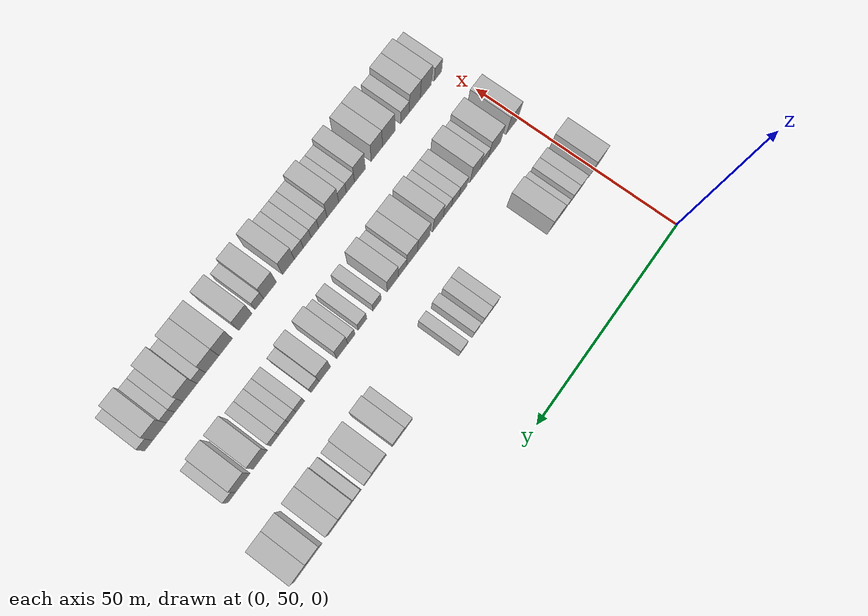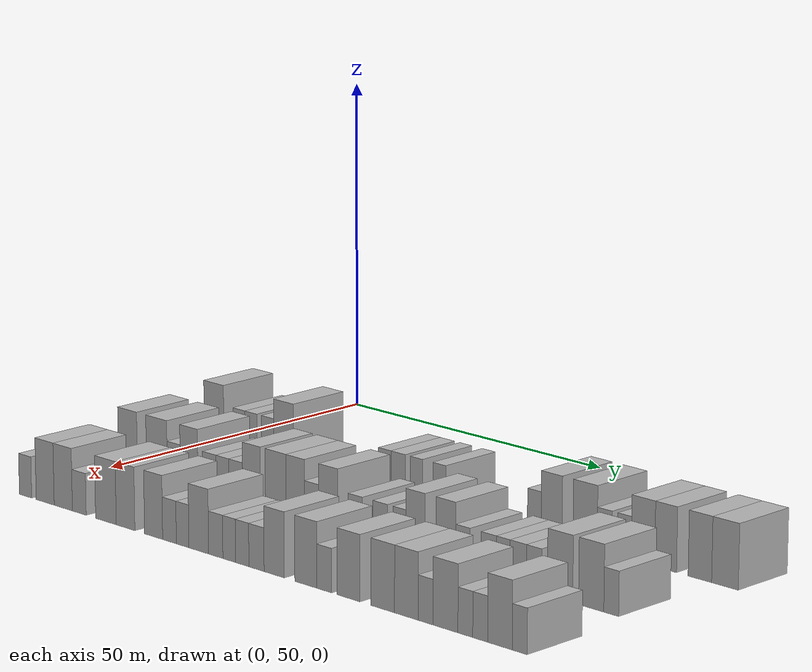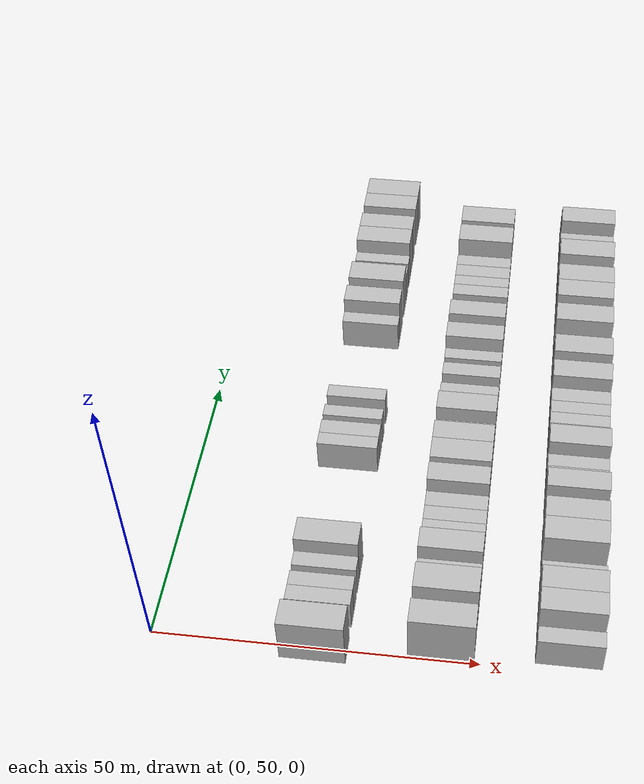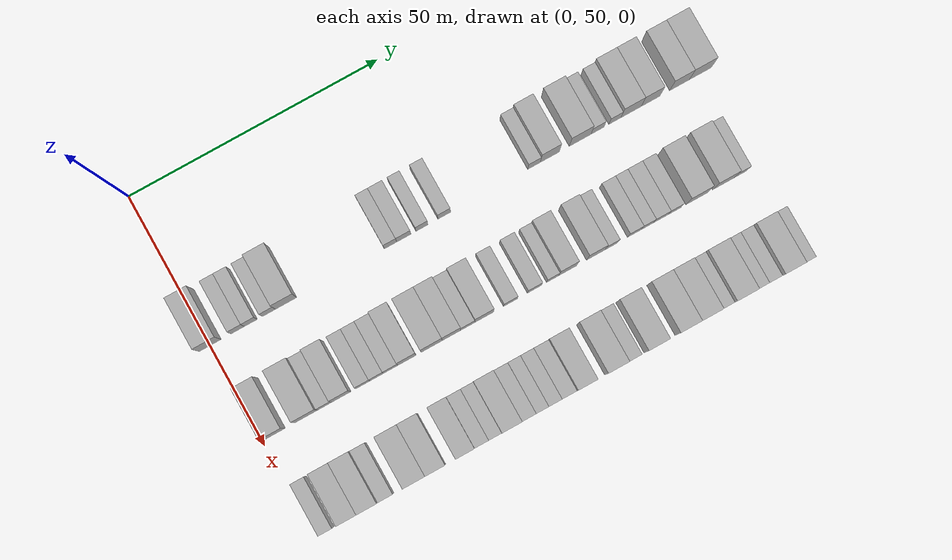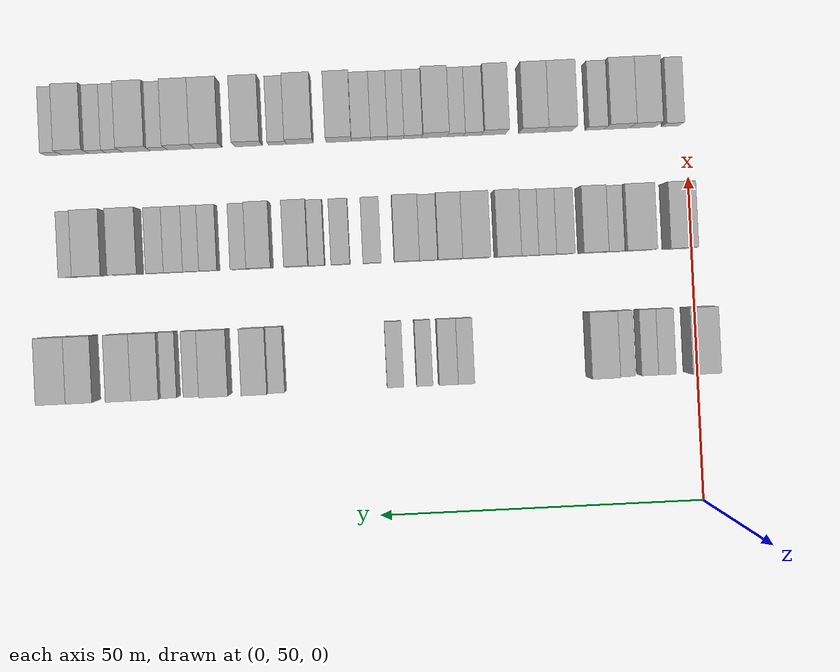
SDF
<sdf version="1.6">
 <world name="default">
  <model name="building_70">
   <static>1</static>
   <pose>25.0000 50.0988 0 0.000000 0.000000 0.000000</pose>
   <link name="link">
    <pose>0 0 4.50 0 0 0</pose>
    <collision name="collision"><geometry><box><size>10.0000 4.3170 9.0000</size></box></geometry></collision>
    <visual name="visual">
     <cast_shadows>0</cast_shadows>
     <geometry><box><size>10.0000 4.3170 9.0000</size></box></geometry>
     <material>
      <script>
       <uri>model://HANNAS_wall/materials/scripts</uri>
       <uri>model://HANNAS_wall/materials/textures</uri>
       <name>vrc/HANNAS_wall</name>
      </script>
     </material>
    </visual>
   </link>
  </model>
  <model name="building_71">
   <static>1</static>
   <pose>25.0000 55.5835 0 0.000000 0.000000 0.000000</pose>
   <link name="link">
    <pose>0 0 3.00 0 0 0</pose>
    <collision name="collision"><geometry><box><size>10.0000 2.6523 6.0000</size></box></geometry></collision>
    <visual name="visual">
     <cast_shadows>0</cast_shadows>
     <geometry><box><size>10.0000 2.6523 6.0000</size></box></geometry>
     <material>
      <script>
       <uri>model://HANNAS_wall/materials/scripts</uri>
       <uri>model://HANNAS_wall/materials/textures</uri>
       <name>vrc/HANNAS_wall</name>
      </script>
     </material>
    </visual>
   </link>
  </model>
  <model name="building_72">
   <static>1</static>
   <pose>25.0000 58.1845 0 0.000000 0.000000 0.000000</pose>
   <link name="link">
    <pose>0 0 3.00 0 0 0</pose>
    <collision name="collision"><geometry><box><size>10.0000 2.5496 6.0000</size></box></geometry></collision>
    <visual name="visual">
     <cast_shadows>0</cast_shadows>
     <geometry><box><size>10.0000 2.5496 6.0000</size></box></geometry>
     <material>
      <script>
       <uri>model://HANNAS_wall/materials/scripts</uri>
       <uri>model://HANNAS_wall/materials/textures</uri>
       <name>vrc/HANNAS_wall</name>
      </script>
     </material>
    </visual>
   </link>
  </model>
  <model name="building_73">
   <static>1</static>
   <pose>25.0000 61.7652 0 0.000000 0.000000 0.000000</pose>
   <link name="link">
    <pose>0 0 3.00 0 0 0</pose>
    <collision name="collision"><geometry><box><size>10.0000 2.6120 6.0000</size></box></geometry></collision>
    <visual name="visual">
     <cast_shadows>0</cast_shadows>
     <geometry><box><size>10.0000 2.6120 6.0000</size></box></geometry>
     <material>
      <script>
       <uri>model://HANNAS_wall/materials/scripts</uri>
       <uri>model://HANNAS_wall/materials/textures</uri>
       <name>vrc/HANNAS_wall</name>
      </script>
     </material>
    </visual>
   </link>
  </model>
  <model name="building_74">
   <static>1</static>
   <pose>25.0000 65.1840 0 0.000000 0.000000 0.000000</pose>
   <link name="link">
    <pose>0 0 4.50 0 0 0</pose>
    <collision name="collision"><geometry><box><size>10.0000 4.2255 9.0000</size></box></geometry></collision>
    <visual name="visual">
     <cast_shadows>0</cast_shadows>
     <geometry><box><size>10.0000 4.2255 9.0000</size></box></geometry>
     <material>
      <script>
       <uri>model://HANNAS_wall/materials/scripts</uri>
       <uri>model://HANNAS_wall/materials/textures</uri>
       <name>vrc/HANNAS_wall</name>
      </script>
     </material>
    </visual>
   </link>
  </model>
  <model name="building_75">
   <static>1</static>
   <pose>25.0000 86.0218 0 0.000000 0.000000 0.000000</pose>
   <link name="link">
    <pose>0 0 3.00 0 0 0</pose>
    <collision name="collision"><geometry><box><size>10.0000 2.4834 6.0000</size></box></geometry></collision>
    <visual name="visual">
     <cast_shadows>0</cast_shadows>
     <geometry><box><size>10.0000 2.4834 6.0000</size></box></geometry>
     <material>
      <script>
       <uri>model://HANNAS_wall/materials/scripts</uri>
       <uri>model://HANNAS_wall/materials/textures</uri>
       <name>vrc/HANNAS_wall</name>
      </script>
     </material>
    </visual>
   </link>
  </model>
  <model name="building_76">
   <static>1</static>
   <pose>25.0000 88.6927 0 0.000000 0.000000 0.000000</pose>
   <link name="link">
    <pose>0 0 3.00 0 0 0</pose>
    <collision name="collision"><geometry><box><size>10.0000 2.8584 6.0000</size></box></geometry></collision>
    <visual name="visual">
     <cast_shadows>0</cast_shadows>
     <geometry><box><size>10.0000 2.8584 6.0000</size></box></geometry>
     <material>
      <script>
       <uri>model://HANNAS_wall/materials/scripts</uri>
       <uri>model://HANNAS_wall/materials/textures</uri>
       <name>vrc/HANNAS_wall</name>
      </script>
     </material>
    </visual>
   </link>
  </model>
  <model name="building_77">
   <static>1</static>
   <pose>25.0000 92.3241 0 0.000000 0.000000 0.000000</pose>
   <link name="link">
    <pose>0 0 3.00 0 0 0</pose>
    <collision name="collision"><geometry><box><size>10.0000 2.4044 6.0000</size></box></geometry></collision>
    <visual name="visual">
     <cast_shadows>0</cast_shadows>
     <geometry><box><size>10.0000 2.4044 6.0000</size></box></geometry>
     <material>
      <script>
       <uri>model://HANNAS_wall/materials/scripts</uri>
       <uri>model://HANNAS_wall/materials/textures</uri>
       <name>vrc/HANNAS_wall</name>
      </script>
     </material>
    </visual>
   </link>
  </model>
  <model name="building_78">
   <static>1</static>
   <pose>25.0000 96.7889 0 0.000000 0.000000 0.000000</pose>
   <link name="link">
    <pose>0 0 3.00 0 0 0</pose>
    <collision name="collision"><geometry><box><size>10.0000 2.5252 6.0000</size></box></geometry></collision>
    <visual name="visual">
     <cast_shadows>0</cast_shadows>
     <geometry><box><size>10.0000 2.5252 6.0000</size></box></geometry>
     <material>
      <script>
       <uri>model://HANNAS_wall/materials/scripts</uri>
       <uri>model://HANNAS_wall/materials/textures</uri>
       <name>vrc/HANNAS_wall</name>
      </script>
     </material>
    </visual>
   </link>
  </model>
  <model name="building_79">
   <static>1</static>
   <pose>25.0000 114.8546 0 0.000000 0.000000 0.000000</pose>
   <link name="link">
    <pose>0 0 3.00 0 0 0</pose>
    <collision name="collision"><geometry><box><size>10.0000 2.5354 6.0000</size></box></geometry></collision>
    <visual name="visual">
     <cast_shadows>0</cast_shadows>
     <geometry><box><size>10.0000 2.5354 6.0000</size></box></geometry>
     <material>
      <script>
       <uri>model://HANNAS_wall/materials/scripts</uri>
       <uri>model://HANNAS_wall/materials/textures</uri>
       <name>vrc/HANNAS_wall</name>
      </script>
     </material>
    </visual>
   </link>
  </model>
  <model name="building_80">
   <static>1</static>
   <pose>25.0000 118.0476 0 0.000000 0.000000 0.000000</pose>
   <link name="link">
    <pose>0 0 4.50 0 0 0</pose>
    <collision name="collision"><geometry><box><size>10.0000 3.8505 9.0000</size></box></geometry></collision>
    <visual name="visual">
     <cast_shadows>0</cast_shadows>
     <geometry><box><size>10.0000 3.8505 9.0000</size></box></geometry>
     <material>
      <script>
       <uri>model://HANNAS_wall/materials/scripts</uri>
       <uri>model://HANNAS_wall/materials/textures</uri>
       <name>vrc/HANNAS_wall</name>
      </script>
     </material>
    </visual>
   </link>
  </model>
  <model name="building_81">
   <static>1</static>
   <pose>25.0000 124.1542 0 0.000000 0.000000 0.000000</pose>
   <link name="link">
    <pose>0 0 4.50 0 0 0</pose>
    <collision name="collision"><geometry><box><size>10.0000 4.3627 9.0000</size></box></geometry></collision>
    <visual name="visual">
     <cast_shadows>0</cast_shadows>
     <geometry><box><size>10.0000 4.3627 9.0000</size></box></geometry>
     <material>
      <script>
       <uri>model://HANNAS_wall/materials/scripts</uri>
       <uri>model://HANNAS_wall/materials/textures</uri>
       <name>vrc/HANNAS_wall</name>
      </script>
     </material>
    </visual>
   </link>
  </model>
  <model name="building_82">
   <static>1</static>
   <pose>25.0000 127.6540 0 0.000000 0.000000 0.000000</pose>
   <link name="link">
    <pose>0 0 3.00 0 0 0</pose>
    <collision name="collision"><geometry><box><size>10.0000 2.6370 6.0000</size></box></geometry></collision>
    <visual name="visual">
     <cast_shadows>0</cast_shadows>
     <geometry><box><size>10.0000 2.6370 6.0000</size></box></geometry>
     <material>
      <script>
       <uri>model://HANNAS_wall/materials/scripts</uri>
       <uri>model://HANNAS_wall/materials/textures</uri>
       <name>vrc/HANNAS_wall</name>
      </script>
     </material>
    </visual>
   </link>
  </model>
  <model name="building_83">
   <static>1</static>
   <pose>25.0000 131.1833 0 0.000000 0.000000 0.000000</pose>
   <link name="link">
    <pose>0 0 3.00 0 0 0</pose>
    <collision name="collision"><geometry><box><size>10.0000 2.4216 6.0000</size></box></geometry></collision>
    <visual name="visual">
     <cast_shadows>0</cast_shadows>
     <geometry><box><size>10.0000 2.4216 6.0000</size></box></geometry>
     <material>
      <script>
       <uri>model://HANNAS_wall/materials/scripts</uri>
       <uri>model://HANNAS_wall/materials/textures</uri>
       <name>vrc/HANNAS_wall</name>
      </script>
     </material>
    </visual>
   </link>
  </model>
  <model name="building_84">
   <static>1</static>
   <pose>25.0000 134.4582 0 0.000000 0.000000 0.000000</pose>
   <link name="link">
    <pose>0 0 4.50 0 0 0</pose>
    <collision name="collision"><geometry><box><size>10.0000 4.1281 9.0000</size></box></geometry></collision>
    <visual name="visual">
     <cast_shadows>0</cast_shadows>
     <geometry><box><size>10.0000 4.1281 9.0000</size></box></geometry>
     <material>
      <script>
       <uri>model://HANNAS_wall/materials/scripts</uri>
       <uri>model://HANNAS_wall/materials/textures</uri>
       <name>vrc/HANNAS_wall</name>
      </script>
     </material>
    </visual>
   </link>
  </model>
  <model name="building_85">
   <static>1</static>
   <pose>25.0000 138.4215 0 0.000000 0.000000 0.000000</pose>
   <link name="link">
    <pose>0 0 4.50 0 0 0</pose>
    <collision name="collision"><geometry><box><size>10.0000 3.7986 9.0000</size></box></geometry></collision>
    <visual name="visual">
     <cast_shadows>0</cast_shadows>
     <geometry><box><size>10.0000 3.7986 9.0000</size></box></geometry>
     <material>
      <script>
       <uri>model://HANNAS_wall/materials/scripts</uri>
       <uri>model://HANNAS_wall/materials/textures</uri>
       <name>vrc/HANNAS_wall</name>
      </script>
     </material>
    </visual>
   </link>
  </model>
  <model name="building_86">
   <static>1</static>
   <pose>25.0000 144.3194 0 0.000000 0.000000 0.000000</pose>
   <link name="link">
    <pose>0 0 4.50 0 0 0</pose>
    <collision name="collision"><geometry><box><size>10.0000 3.9971 9.0000</size></box></geometry></collision>
    <visual name="visual">
     <cast_shadows>0</cast_shadows>
     <geometry><box><size>10.0000 3.9971 9.0000</size></box></geometry>
     <material>
      <script>
       <uri>model://HANNAS_wall/materials/scripts</uri>
       <uri>model://HANNAS_wall/materials/textures</uri>
       <name>vrc/HANNAS_wall</name>
      </script>
     </material>
    </visual>
   </link>
  </model>
  <model name="building_87">
   <static>1</static>
   <pose>25.0000 148.5653 0 0.000000 0.000000 0.000000</pose>
   <link name="link">
    <pose>0 0 4.50 0 0 0</pose>
    <collision name="collision"><geometry><box><size>10.0000 4.4947 9.0000</size></box></geometry></collision>
    <visual name="visual">
     <cast_shadows>0</cast_shadows>
     <geometry><box><size>10.0000 4.4947 9.0000</size></box></geometry>
     <material>
      <script>
       <uri>model://HANNAS_wall/materials/scripts</uri>
       <uri>model://HANNAS_wall/materials/textures</uri>
       <name>vrc/HANNAS_wall</name>
      </script>
     </material>
    </visual>
   </link>
  </model>
  <model name="building_178">
   <static>1</static>
   <pose>44.0000 52.5532 0 0.000000 0.000000 0.000000</pose>
   <link name="link">
    <pose>0 0 4.50 0 0 0</pose>
    <collision name="collision"><geometry><box><size>10.0000 4.1477 9.0000</size></box></geometry></collision>
    <visual name="visual">
     <cast_shadows>0</cast_shadows>
     <geometry><box><size>10.0000 4.1477 9.0000</size></box></geometry>
     <material>
      <script>
       <uri>model://HANNAS_wall/materials/scripts</uri>
       <uri>model://HANNAS_wall/materials/textures</uri>
       <name>vrc/HANNAS_wall</name>
      </script>
     </material>
    </visual>
   </link>
  </model>
  <model name="building_179">
   <static>1</static>
   <pose>44.0000 58.8761 0 0.000000 0.000000 0.000000</pose>
   <link name="link">
    <pose>0 0 4.50 0 0 0</pose>
    <collision name="collision"><geometry><box><size>10.0000 4.4980 9.0000</size></box></geometry></collision>
    <visual name="visual">
     <cast_shadows>0</cast_shadows>
     <geometry><box><size>10.0000 4.4980 9.0000</size></box></geometry>
     <material>
      <script>
       <uri>model://HANNAS_wall/materials/scripts</uri>
       <uri>model://HANNAS_wall/materials/textures</uri>
       <name>vrc/HANNAS_wall</name>
      </script>
     </material>
    </visual>
   </link>
  </model>
  <model name="building_180">
   <static>1</static>
   <pose>44.0000 62.5191 0 0.000000 0.000000 0.000000</pose>
   <link name="link">
    <pose>0 0 3.00 0 0 0</pose>
    <collision name="collision"><geometry><box><size>10.0000 2.7881 6.0000</size></box></geometry></collision>
    <visual name="visual">
     <cast_shadows>0</cast_shadows>
     <geometry><box><size>10.0000 2.7881 6.0000</size></box></geometry>
     <material>
      <script>
       <uri>model://HANNAS_wall/materials/scripts</uri>
       <uri>model://HANNAS_wall/materials/textures</uri>
       <name>vrc/HANNAS_wall</name>
      </script>
     </material>
    </visual>
   </link>
  </model>
  <model name="building_181">
   <static>1</static>
   <pose>44.0000 65.7856 0 0.000000 0.000000 0.000000</pose>
   <link name="link">
    <pose>0 0 4.50 0 0 0</pose>
    <collision name="collision"><geometry><box><size>10.0000 3.7450 9.0000</size></box></geometry></collision>
    <visual name="visual">
     <cast_shadows>0</cast_shadows>
     <geometry><box><size>10.0000 3.7450 9.0000</size></box></geometry>
     <material>
      <script>
       <uri>model://HANNAS_wall/materials/scripts</uri>
       <uri>model://HANNAS_wall/materials/textures</uri>
       <name>vrc/HANNAS_wall</name>
      </script>
     </material>
    </visual>
   </link>
  </model>
  <model name="building_182">
   <static>1</static>
   <pose>44.0000 70.0593 0 0.000000 0.000000 0.000000</pose>
   <link name="link">
    <pose>0 0 3.00 0 0 0</pose>
    <collision name="collision"><geometry><box><size>10.0000 2.8023 6.0000</size></box></geometry></collision>
    <visual name="visual">
     <cast_shadows>0</cast_shadows>
     <geometry><box><size>10.0000 2.8023 6.0000</size></box></geometry>
     <material>
      <script>
       <uri>model://HANNAS_wall/materials/scripts</uri>
       <uri>model://HANNAS_wall/materials/textures</uri>
       <name>vrc/HANNAS_wall</name>
      </script>
     </material>
    </visual>
   </link>
  </model>
  <model name="building_183">
   <static>1</static>
   <pose>44.0000 72.8020 0 0.000000 0.000000 0.000000</pose>
   <link name="link">
    <pose>0 0 3.00 0 0 0</pose>
    <collision name="collision"><geometry><box><size>10.0000 2.6830 6.0000</size></box></geometry></collision>
    <visual name="visual">
     <cast_shadows>0</cast_shadows>
     <geometry><box><size>10.0000 2.6830 6.0000</size></box></geometry>
     <material>
      <script>
       <uri>model://HANNAS_wall/materials/scripts</uri>
       <uri>model://HANNAS_wall/materials/textures</uri>
       <name>vrc/HANNAS_wall</name>
      </script>
     </material>
    </visual>
   </link>
  </model>
  <model name="building_184">
   <static>1</static>
   <pose>44.0000 75.5749 0 0.000000 0.000000 0.000000</pose>
   <link name="link">
    <pose>0 0 3.00 0 0 0</pose>
    <collision name="collision"><geometry><box><size>10.0000 2.8629 6.0000</size></box></geometry></collision>
    <visual name="visual">
     <cast_shadows>0</cast_shadows>
     <geometry><box><size>10.0000 2.8629 6.0000</size></box></geometry>
     <material>
      <script>
       <uri>model://HANNAS_wall/materials/scripts</uri>
       <uri>model://HANNAS_wall/materials/textures</uri>
       <name>vrc/HANNAS_wall</name>
      </script>
     </material>
    </visual>
   </link>
  </model>
  <model name="building_185">
   <static>1</static>
   <pose>44.0000 78.8162 0 0.000000 0.000000 0.000000</pose>
   <link name="link">
    <pose>0 0 4.50 0 0 0</pose>
    <collision name="collision"><geometry><box><size>10.0000 3.6196 9.0000</size></box></geometry></collision>
    <visual name="visual">
     <cast_shadows>0</cast_shadows>
     <geometry><box><size>10.0000 3.6196 9.0000</size></box></geometry>
     <material>
      <script>
       <uri>model://HANNAS_wall/materials/scripts</uri>
       <uri>model://HANNAS_wall/materials/textures</uri>
       <name>vrc/HANNAS_wall</name>
      </script>
     </material>
    </visual>
   </link>
  </model>
  <model name="building_186">
   <static>1</static>
   <pose>44.0000 83.7290 0 0.000000 0.000000 0.000000</pose>
   <link name="link">
    <pose>0 0 4.50 0 0 0</pose>
    <collision name="collision"><geometry><box><size>10.0000 4.2061 9.0000</size></box></geometry></collision>
    <visual name="visual">
     <cast_shadows>0</cast_shadows>
     <geometry><box><size>10.0000 4.2061 9.0000</size></box></geometry>
     <material>
      <script>
       <uri>model://HANNAS_wall/materials/scripts</uri>
       <uri>model://HANNAS_wall/materials/textures</uri>
       <name>vrc/HANNAS_wall</name>
      </script>
     </material>
    </visual>
   </link>
  </model>
  <model name="building_187">
   <static>1</static>
   <pose>44.0000 87.6617 0 0.000000 0.000000 0.000000</pose>
   <link name="link">
    <pose>0 0 4.50 0 0 0</pose>
    <collision name="collision"><geometry><box><size>10.0000 3.6593 9.0000</size></box></geometry></collision>
    <visual name="visual">
     <cast_shadows>0</cast_shadows>
     <geometry><box><size>10.0000 3.6593 9.0000</size></box></geometry>
     <material>
      <script>
       <uri>model://HANNAS_wall/materials/scripts</uri>
       <uri>model://HANNAS_wall/materials/textures</uri>
       <name>vrc/HANNAS_wall</name>
      </script>
     </material>
    </visual>
   </link>
  </model>
  <model name="building_188">
   <static>1</static>
   <pose>44.0000 90.9011 0 0.000000 0.000000 0.000000</pose>
   <link name="link">
    <pose>0 0 3.00 0 0 0</pose>
    <collision name="collision"><geometry><box><size>10.0000 2.8195 6.0000</size></box></geometry></collision>
    <visual name="visual">
     <cast_shadows>0</cast_shadows>
     <geometry><box><size>10.0000 2.8195 6.0000</size></box></geometry>
     <material>
      <script>
       <uri>model://HANNAS_wall/materials/scripts</uri>
       <uri>model://HANNAS_wall/materials/textures</uri>
       <name>vrc/HANNAS_wall</name>
      </script>
     </material>
    </visual>
   </link>
  </model>
  <model name="building_189">
   <static>1</static>
   <pose>44.0000 94.1889 0 0.000000 0.000000 0.000000</pose>
   <link name="link">
    <pose>0 0 4.50 0 0 0</pose>
    <collision name="collision"><geometry><box><size>10.0000 3.7561 9.0000</size></box></geometry></collision>
    <visual name="visual">
     <cast_shadows>0</cast_shadows>
     <geometry><box><size>10.0000 3.7561 9.0000</size></box></geometry>
     <material>
      <script>
       <uri>model://HANNAS_wall/materials/scripts</uri>
       <uri>model://HANNAS_wall/materials/textures</uri>
       <name>vrc/HANNAS_wall</name>
      </script>
     </material>
    </visual>
   </link>
  </model>
  <model name="building_190">
   <static>1</static>
   <pose>44.0000 99.4490 0 0.000000 0.000000 0.000000</pose>
   <link name="link">
    <pose>0 0 3.00 0 0 0</pose>
    <collision name="collision"><geometry><box><size>10.0000 2.7641 6.0000</size></box></geometry></collision>
    <visual name="visual">
     <cast_shadows>0</cast_shadows>
     <geometry><box><size>10.0000 2.7641 6.0000</size></box></geometry>
     <material>
      <script>
       <uri>model://HANNAS_wall/materials/scripts</uri>
       <uri>model://HANNAS_wall/materials/textures</uri>
       <name>vrc/HANNAS_wall</name>
      </script>
     </material>
    </visual>
   </link>
  </model>
  <model name="building_191">
   <static>1</static>
   <pose>44.0000 104.2594 0 0.000000 0.000000 0.000000</pose>
   <link name="link">
    <pose>0 0 3.00 0 0 0</pose>
    <collision name="collision"><geometry><box><size>10.0000 2.8566 6.0000</size></box></geometry></collision>
    <visual name="visual">
     <cast_shadows>0</cast_shadows>
     <geometry><box><size>10.0000 2.8566 6.0000</size></box></geometry>
     <material>
      <script>
       <uri>model://HANNAS_wall/materials/scripts</uri>
       <uri>model://HANNAS_wall/materials/textures</uri>
       <name>vrc/HANNAS_wall</name>
      </script>
     </material>
    </visual>
   </link>
  </model>
  <model name="building_192">
   <static>1</static>
   <pose>44.0000 107.8938 0 0.000000 0.000000 0.000000</pose>
   <link name="link">
    <pose>0 0 3.00 0 0 0</pose>
    <collision name="collision"><geometry><box><size>10.0000 2.4122 6.0000</size></box></geometry></collision>
    <visual name="visual">
     <cast_shadows>0</cast_shadows>
     <geometry><box><size>10.0000 2.4122 6.0000</size></box></geometry>
     <material>
      <script>
       <uri>model://HANNAS_wall/materials/scripts</uri>
       <uri>model://HANNAS_wall/materials/textures</uri>
       <name>vrc/HANNAS_wall</name>
      </script>
     </material>
    </visual>
   </link>
  </model>
  <model name="building_193">
   <static>1</static>
   <pose>44.0000 110.9068 0 0.000000 0.000000 0.000000</pose>
   <link name="link">
    <pose>0 0 4.50 0 0 0</pose>
    <collision name="collision"><geometry><box><size>10.0000 3.6139 9.0000</size></box></geometry></collision>
    <visual name="visual">
     <cast_shadows>0</cast_shadows>
     <geometry><box><size>10.0000 3.6139 9.0000</size></box></geometry>
     <material>
      <script>
       <uri>model://HANNAS_wall/materials/scripts</uri>
       <uri>model://HANNAS_wall/materials/textures</uri>
       <name>vrc/HANNAS_wall</name>
      </script>
     </material>
    </visual>
   </link>
  </model>
  <model name="building_194">
   <static>1</static>
   <pose>44.0000 116.5399 0 0.000000 0.000000 0.000000</pose>
   <link name="link">
    <pose>0 0 4.50 0 0 0</pose>
    <collision name="collision"><geometry><box><size>10.0000 3.6522 9.0000</size></box></geometry></collision>
    <visual name="visual">
     <cast_shadows>0</cast_shadows>
     <geometry><box><size>10.0000 3.6522 9.0000</size></box></geometry>
     <material>
      <script>
       <uri>model://HANNAS_wall/materials/scripts</uri>
       <uri>model://HANNAS_wall/materials/textures</uri>
       <name>vrc/HANNAS_wall</name>
      </script>
     </material>
    </visual>
   </link>
  </model>
  <model name="building_195">
   <static>1</static>
   <pose>44.0000 119.6720 0 0.000000 0.000000 0.000000</pose>
   <link name="link">
    <pose>0 0 3.00 0 0 0</pose>
    <collision name="collision"><geometry><box><size>10.0000 2.6119 6.0000</size></box></geometry></collision>
    <visual name="visual">
     <cast_shadows>0</cast_shadows>
     <geometry><box><size>10.0000 2.6119 6.0000</size></box></geometry>
     <material>
      <script>
       <uri>model://HANNAS_wall/materials/scripts</uri>
       <uri>model://HANNAS_wall/materials/textures</uri>
       <name>vrc/HANNAS_wall</name>
      </script>
     </material>
    </visual>
   </link>
  </model>
  <model name="building_196">
   <static>1</static>
   <pose>44.0000 124.3446 0 0.000000 0.000000 0.000000</pose>
   <link name="link">
    <pose>0 0 3.00 0 0 0</pose>
    <collision name="collision"><geometry><box><size>10.0000 2.7333 6.0000</size></box></geometry></collision>
    <visual name="visual">
     <cast_shadows>0</cast_shadows>
     <geometry><box><size>10.0000 2.7333 6.0000</size></box></geometry>
     <material>
      <script>
       <uri>model://HANNAS_wall/materials/scripts</uri>
       <uri>model://HANNAS_wall/materials/textures</uri>
       <name>vrc/HANNAS_wall</name>
      </script>
     </material>
    </visual>
   </link>
  </model>
  <model name="building_197">
   <static>1</static>
   <pose>44.0000 126.9331 0 0.000000 0.000000 0.000000</pose>
   <link name="link">
    <pose>0 0 3.00 0 0 0</pose>
    <collision name="collision"><geometry><box><size>10.0000 2.4438 6.0000</size></box></geometry></collision>
    <visual name="visual">
     <cast_shadows>0</cast_shadows>
     <geometry><box><size>10.0000 2.4438 6.0000</size></box></geometry>
     <material>
      <script>
       <uri>model://HANNAS_wall/materials/scripts</uri>
       <uri>model://HANNAS_wall/materials/textures</uri>
       <name>vrc/HANNAS_wall</name>
      </script>
     </material>
    </visual>
   </link>
  </model>
  <model name="building_198">
   <static>1</static>
   <pose>44.0000 129.6224 0 0.000000 0.000000 0.000000</pose>
   <link name="link">
    <pose>0 0 3.00 0 0 0</pose>
    <collision name="collision"><geometry><box><size>10.0000 2.9348 6.0000</size></box></geometry></collision>
    <visual name="visual">
     <cast_shadows>0</cast_shadows>
     <geometry><box><size>10.0000 2.9348 6.0000</size></box></geometry>
     <material>
      <script>
       <uri>model://HANNAS_wall/materials/scripts</uri>
       <uri>model://HANNAS_wall/materials/textures</uri>
       <name>vrc/HANNAS_wall</name>
      </script>
     </material>
    </visual>
   </link>
  </model>
  <model name="building_199">
   <static>1</static>
   <pose>44.0000 132.4322 0 0.000000 0.000000 0.000000</pose>
   <link name="link">
    <pose>0 0 3.00 0 0 0</pose>
    <collision name="collision"><geometry><box><size>10.0000 2.6848 6.0000</size></box></geometry></collision>
    <visual name="visual">
     <cast_shadows>0</cast_shadows>
     <geometry><box><size>10.0000 2.6848 6.0000</size></box></geometry>
     <material>
      <script>
       <uri>model://HANNAS_wall/materials/scripts</uri>
       <uri>model://HANNAS_wall/materials/textures</uri>
       <name>vrc/HANNAS_wall</name>
      </script>
     </material>
    </visual>
   </link>
  </model>
  <model name="building_200">
   <static>1</static>
   <pose>44.0000 136.9793 0 0.000000 0.000000 0.000000</pose>
   <link name="link">
    <pose>0 0 4.50 0 0 0</pose>
    <collision name="collision"><geometry><box><size>10.0000 4.4093 9.0000</size></box></geometry></collision>
    <visual name="visual">
     <cast_shadows>0</cast_shadows>
     <geometry><box><size>10.0000 4.4093 9.0000</size></box></geometry>
     <material>
      <script>
       <uri>model://HANNAS_wall/materials/scripts</uri>
       <uri>model://HANNAS_wall/materials/textures</uri>
       <name>vrc/HANNAS_wall</name>
      </script>
     </material>
    </visual>
   </link>
  </model>
  <model name="building_201">
   <static>1</static>
   <pose>44.0000 142.3476 0 0.000000 0.000000 0.000000</pose>
   <link name="link">
    <pose>0 0 4.50 0 0 0</pose>
    <collision name="collision"><geometry><box><size>10.0000 4.3271 9.0000</size></box></geometry></collision>
    <visual name="visual">
     <cast_shadows>0</cast_shadows>
     <geometry><box><size>10.0000 4.3271 9.0000</size></box></geometry>
     <material>
      <script>
       <uri>model://HANNAS_wall/materials/scripts</uri>
       <uri>model://HANNAS_wall/materials/textures</uri>
       <name>vrc/HANNAS_wall</name>
      </script>
     </material>
    </visual>
   </link>
  </model>
  <model name="building_202">
   <static>1</static>
   <pose>44.0000 145.7685 0 0.000000 0.000000 0.000000</pose>
   <link name="link">
    <pose>0 0 3.00 0 0 0</pose>
    <collision name="collision"><geometry><box><size>10.0000 2.5148 6.0000</size></box></geometry></collision>
    <visual name="visual">
     <cast_shadows>0</cast_shadows>
     <geometry><box><size>10.0000 2.5148 6.0000</size></box></geometry>
     <material>
      <script>
       <uri>model://HANNAS_wall/materials/scripts</uri>
       <uri>model://HANNAS_wall/materials/textures</uri>
       <name>vrc/HANNAS_wall</name>
      </script>
     </material>
    </visual>
   </link>
  </model>
  <model name="building_295">
   <static>1</static>
   <pose>63.0000 52.5164 0 0.000000 0.000000 0.000000</pose>
   <link name="link">
    <pose>0 0 3.00 0 0 0</pose>
    <collision name="collision"><geometry><box><size>10.0000 2.6972 6.0000</size></box></geometry></collision>
    <visual name="visual">
     <cast_shadows>0</cast_shadows>
     <geometry><box><size>10.0000 2.6972 6.0000</size></box></geometry>
     <material>
      <script>
       <uri>model://HANNAS_wall/materials/scripts</uri>
       <uri>model://HANNAS_wall/materials/textures</uri>
       <name>vrc/HANNAS_wall</name>
      </script>
     </material>
    </visual>
   </link>
  </model>
  <model name="building_296">
   <static>1</static>
   <pose>63.0000 56.8306 0 0.000000 0.000000 0.000000</pose>
   <link name="link">
    <pose>0 0 4.50 0 0 0</pose>
    <collision name="collision"><geometry><box><size>10.0000 3.9310 9.0000</size></box></geometry></collision>
    <visual name="visual">
     <cast_shadows>0</cast_shadows>
     <geometry><box><size>10.0000 3.9310 9.0000</size></box></geometry>
     <material>
      <script>
       <uri>model://HANNAS_wall/materials/scripts</uri>
       <uri>model://HANNAS_wall/materials/textures</uri>
       <name>vrc/HANNAS_wall</name>
      </script>
     </material>
    </visual>
   </link>
  </model>
  <model name="building_297">
   <static>1</static>
   <pose>63.0000 60.7621 0 0.000000 0.000000 0.000000</pose>
   <link name="link">
    <pose>0 0 4.50 0 0 0</pose>
    <collision name="collision"><geometry><box><size>10.0000 3.9321 9.0000</size></box></geometry></collision>
    <visual name="visual">
     <cast_shadows>0</cast_shadows>
     <geometry><box><size>10.0000 3.9321 9.0000</size></box></geometry>
     <material>
      <script>
       <uri>model://HANNAS_wall/materials/scripts</uri>
       <uri>model://HANNAS_wall/materials/textures</uri>
       <name>vrc/HANNAS_wall</name>
      </script>
     </material>
    </visual>
   </link>
  </model>
  <model name="building_298">
   <static>1</static>
   <pose>63.0000 64.2056 0 0.000000 0.000000 0.000000</pose>
   <link name="link">
    <pose>0 0 3.00 0 0 0</pose>
    <collision name="collision"><geometry><box><size>10.0000 2.9548 6.0000</size></box></geometry></collision>
    <visual name="visual">
     <cast_shadows>0</cast_shadows>
     <geometry><box><size>10.0000 2.9548 6.0000</size></box></geometry>
     <material>
      <script>
       <uri>model://HANNAS_wall/materials/scripts</uri>
       <uri>model://HANNAS_wall/materials/textures</uri>
       <name>vrc/HANNAS_wall</name>
      </script>
     </material>
    </visual>
   </link>
  </model>
  <model name="building_299">
   <static>1</static>
   <pose>63.0000 69.8560 0 0.000000 0.000000 0.000000</pose>
   <link name="link">
    <pose>0 0 4.50 0 0 0</pose>
    <collision name="collision"><geometry><box><size>10.0000 4.3460 9.0000</size></box></geometry></collision>
    <visual name="visual">
     <cast_shadows>0</cast_shadows>
     <geometry><box><size>10.0000 4.3460 9.0000</size></box></geometry>
     <material>
      <script>
       <uri>model://HANNAS_wall/materials/scripts</uri>
       <uri>model://HANNAS_wall/materials/textures</uri>
       <name>vrc/HANNAS_wall</name>
      </script>
     </material>
    </visual>
   </link>
  </model>
  <model name="building_300">
   <static>1</static>
   <pose>63.0000 73.9761 0 0.000000 0.000000 0.000000</pose>
   <link name="link">
    <pose>0 0 4.50 0 0 0</pose>
    <collision name="collision"><geometry><box><size>10.0000 3.8941 9.0000</size></box></geometry></collision>
    <visual name="visual">
     <cast_shadows>0</cast_shadows>
     <geometry><box><size>10.0000 3.8941 9.0000</size></box></geometry>
     <material>
      <script>
       <uri>model://HANNAS_wall/materials/scripts</uri>
       <uri>model://HANNAS_wall/materials/textures</uri>
       <name>vrc/HANNAS_wall</name>
      </script>
     </material>
    </visual>
   </link>
  </model>
  <model name="building_301">
   <static>1</static>
   <pose>63.0000 79.7736 0 0.000000 0.000000 0.000000</pose>
   <link name="link">
    <pose>0 0 4.50 0 0 0</pose>
    <collision name="collision"><geometry><box><size>10.0000 3.7009 9.0000</size></box></geometry></collision>
    <visual name="visual">
     <cast_shadows>0</cast_shadows>
     <geometry><box><size>10.0000 3.7009 9.0000</size></box></geometry>
     <material>
      <script>
       <uri>model://HANNAS_wall/materials/scripts</uri>
       <uri>model://HANNAS_wall/materials/textures</uri>
       <name>vrc/HANNAS_wall</name>
      </script>
     </material>
    </visual>
   </link>
  </model>
  <model name="building_302">
   <static>1</static>
   <pose>63.0000 83.0160 0 0.000000 0.000000 0.000000</pose>
   <link name="link">
    <pose>0 0 3.00 0 0 0</pose>
    <collision name="collision"><geometry><box><size>10.0000 2.7839 6.0000</size></box></geometry></collision>
    <visual name="visual">
     <cast_shadows>0</cast_shadows>
     <geometry><box><size>10.0000 2.7839 6.0000</size></box></geometry>
     <material>
      <script>
       <uri>model://HANNAS_wall/materials/scripts</uri>
       <uri>model://HANNAS_wall/materials/textures</uri>
       <name>vrc/HANNAS_wall</name>
      </script>
     </material>
    </visual>
   </link>
  </model>
  <model name="building_303">
   <static>1</static>
   <pose>63.0000 85.6783 0 0.000000 0.000000 0.000000</pose>
   <link name="link">
    <pose>0 0 3.00 0 0 0</pose>
    <collision name="collision"><geometry><box><size>10.0000 2.5407 6.0000</size></box></geometry></collision>
    <visual name="visual">
     <cast_shadows>0</cast_shadows>
     <geometry><box><size>10.0000 2.5407 6.0000</size></box></geometry>
     <material>
      <script>
       <uri>model://HANNAS_wall/materials/scripts</uri>
       <uri>model://HANNAS_wall/materials/textures</uri>
       <name>vrc/HANNAS_wall</name>
      </script>
     </material>
    </visual>
   </link>
  </model>
  <model name="building_304">
   <static>1</static>
   <pose>63.0000 88.9148 0 0.000000 0.000000 0.000000</pose>
   <link name="link">
    <pose>0 0 4.50 0 0 0</pose>
    <collision name="collision"><geometry><box><size>10.0000 3.9324 9.0000</size></box></geometry></collision>
    <visual name="visual">
     <cast_shadows>0</cast_shadows>
     <geometry><box><size>10.0000 3.9324 9.0000</size></box></geometry>
     <material>
      <script>
       <uri>model://HANNAS_wall/materials/scripts</uri>
       <uri>model://HANNAS_wall/materials/textures</uri>
       <name>vrc/HANNAS_wall</name>
      </script>
     </material>
    </visual>
   </link>
  </model>
  <model name="building_305">
   <static>1</static>
   <pose>63.0000 92.2938 0 0.000000 0.000000 0.000000</pose>
   <link name="link">
    <pose>0 0 3.00 0 0 0</pose>
    <collision name="collision"><geometry><box><size>10.0000 2.8257 6.0000</size></box></geometry></collision>
    <visual name="visual">
     <cast_shadows>0</cast_shadows>
     <geometry><box><size>10.0000 2.8257 6.0000</size></box></geometry>
     <material>
      <script>
       <uri>model://HANNAS_wall/materials/scripts</uri>
       <uri>model://HANNAS_wall/materials/textures</uri>
       <name>vrc/HANNAS_wall</name>
      </script>
     </material>
    </visual>
   </link>
  </model>
  <model name="building_306">
   <static>1</static>
   <pose>63.0000 94.9513 0 0.000000 0.000000 0.000000</pose>
   <link name="link">
    <pose>0 0 3.00 0 0 0</pose>
    <collision name="collision"><geometry><box><size>10.0000 2.4892 6.0000</size></box></geometry></collision>
    <visual name="visual">
     <cast_shadows>0</cast_shadows>
     <geometry><box><size>10.0000 2.4892 6.0000</size></box></geometry>
     <material>
      <script>
       <uri>model://HANNAS_wall/materials/scripts</uri>
       <uri>model://HANNAS_wall/materials/textures</uri>
       <name>vrc/HANNAS_wall</name>
      </script>
     </material>
    </visual>
   </link>
  </model>
  <model name="building_307">
   <static>1</static>
   <pose>63.0000 97.4956 0 0.000000 0.000000 0.000000</pose>
   <link name="link">
    <pose>0 0 3.00 0 0 0</pose>
    <collision name="collision"><geometry><box><size>10.0000 2.5994 6.0000</size></box></geometry></collision>
    <visual name="visual">
     <cast_shadows>0</cast_shadows>
     <geometry><box><size>10.0000 2.5994 6.0000</size></box></geometry>
     <material>
      <script>
       <uri>model://HANNAS_wall/materials/scripts</uri>
       <uri>model://HANNAS_wall/materials/textures</uri>
       <name>vrc/HANNAS_wall</name>
      </script>
     </material>
    </visual>
   </link>
  </model>
  <model name="building_308">
   <static>1</static>
   <pose>63.0000 100.2671 0 0.000000 0.000000 0.000000</pose>
   <link name="link">
    <pose>0 0 3.00 0 0 0</pose>
    <collision name="collision"><geometry><box><size>10.0000 2.9437 6.0000</size></box></geometry></collision>
    <visual name="visual">
     <cast_shadows>0</cast_shadows>
     <geometry><box><size>10.0000 2.9437 6.0000</size></box></geometry>
     <material>
      <script>
       <uri>model://HANNAS_wall/materials/scripts</uri>
       <uri>model://HANNAS_wall/materials/textures</uri>
       <name>vrc/HANNAS_wall</name>
      </script>
     </material>
    </visual>
   </link>
  </model>
  <model name="building_309">
   <static>1</static>
   <pose>63.0000 103.6748 0 0.000000 0.000000 0.000000</pose>
   <link name="link">
    <pose>0 0 4.50 0 0 0</pose>
    <collision name="collision"><geometry><box><size>10.0000 3.8716 9.0000</size></box></geometry></collision>
    <visual name="visual">
     <cast_shadows>0</cast_shadows>
     <geometry><box><size>10.0000 3.8716 9.0000</size></box></geometry>
     <material>
      <script>
       <uri>model://HANNAS_wall/materials/scripts</uri>
       <uri>model://HANNAS_wall/materials/textures</uri>
       <name>vrc/HANNAS_wall</name>
      </script>
     </material>
    </visual>
   </link>
  </model>
  <model name="building_310">
   <static>1</static>
   <pose>63.0000 109.6930 0 0.000000 0.000000 0.000000</pose>
   <link name="link">
    <pose>0 0 4.50 0 0 0</pose>
    <collision name="collision"><geometry><box><size>10.0000 4.1648 9.0000</size></box></geometry></collision>
    <visual name="visual">
     <cast_shadows>0</cast_shadows>
     <geometry><box><size>10.0000 4.1648 9.0000</size></box></geometry>
     <material>
      <script>
       <uri>model://HANNAS_wall/materials/scripts</uri>
       <uri>model://HANNAS_wall/materials/textures</uri>
       <name>vrc/HANNAS_wall</name>
      </script>
     </material>
    </visual>
   </link>
  </model>
  <model name="building_311">
   <static>1</static>
   <pose>63.0000 113.1389 0 0.000000 0.000000 0.000000</pose>
   <link name="link">
    <pose>0 0 3.00 0 0 0</pose>
    <collision name="collision"><geometry><box><size>10.0000 2.7269 6.0000</size></box></geometry></collision>
    <visual name="visual">
     <cast_shadows>0</cast_shadows>
     <geometry><box><size>10.0000 2.7269 6.0000</size></box></geometry>
     <material>
      <script>
       <uri>model://HANNAS_wall/materials/scripts</uri>
       <uri>model://HANNAS_wall/materials/textures</uri>
       <name>vrc/HANNAS_wall</name>
      </script>
     </material>
    </visual>
   </link>
  </model>
  <model name="building_312">
   <static>1</static>
   <pose>63.0000 117.6153 0 0.000000 0.000000 0.000000</pose>
   <link name="link">
    <pose>0 0 4.50 0 0 0</pose>
    <collision name="collision"><geometry><box><size>10.0000 4.2260 9.0000</size></box></geometry></collision>
    <visual name="visual">
     <cast_shadows>0</cast_shadows>
     <geometry><box><size>10.0000 4.2260 9.0000</size></box></geometry>
     <material>
      <script>
       <uri>model://HANNAS_wall/materials/scripts</uri>
       <uri>model://HANNAS_wall/materials/textures</uri>
       <name>vrc/HANNAS_wall</name>
      </script>
     </material>
    </visual>
   </link>
  </model>
  <model name="building_313">
   <static>1</static>
   <pose>63.0000 123.8538 0 0.000000 0.000000 0.000000</pose>
   <link name="link">
    <pose>0 0 4.50 0 0 0</pose>
    <collision name="collision"><geometry><box><size>10.0000 4.2509 9.0000</size></box></geometry></collision>
    <visual name="visual">
     <cast_shadows>0</cast_shadows>
     <geometry><box><size>10.0000 4.2509 9.0000</size></box></geometry>
     <material>
      <script>
       <uri>model://HANNAS_wall/materials/scripts</uri>
       <uri>model://HANNAS_wall/materials/textures</uri>
       <name>vrc/HANNAS_wall</name>
      </script>
     </material>
    </visual>
   </link>
  </model>
  <model name="building_314">
   <static>1</static>
   <pose>63.0000 128.0690 0 0.000000 0.000000 0.000000</pose>
   <link name="link">
    <pose>0 0 4.50 0 0 0</pose>
    <collision name="collision"><geometry><box><size>10.0000 4.1796 9.0000</size></box></geometry></collision>
    <visual name="visual">
     <cast_shadows>0</cast_shadows>
     <geometry><box><size>10.0000 4.1796 9.0000</size></box></geometry>
     <material>
      <script>
       <uri>model://HANNAS_wall/materials/scripts</uri>
       <uri>model://HANNAS_wall/materials/textures</uri>
       <name>vrc/HANNAS_wall</name>
      </script>
     </material>
    </visual>
   </link>
  </model>
  <model name="building_315">
   <static>1</static>
   <pose>63.0000 131.4788 0 0.000000 0.000000 0.000000</pose>
   <link name="link">
    <pose>0 0 3.00 0 0 0</pose>
    <collision name="collision"><geometry><box><size>10.0000 2.6399 6.0000</size></box></geometry></collision>
    <visual name="visual">
     <cast_shadows>0</cast_shadows>
     <geometry><box><size>10.0000 2.6399 6.0000</size></box></geometry>
     <material>
      <script>
       <uri>model://HANNAS_wall/materials/scripts</uri>
       <uri>model://HANNAS_wall/materials/textures</uri>
       <name>vrc/HANNAS_wall</name>
      </script>
     </material>
    </visual>
   </link>
  </model>
  <model name="building_316">
   <static>1</static>
   <pose>63.0000 134.9703 0 0.000000 0.000000 0.000000</pose>
   <link name="link">
    <pose>0 0 4.50 0 0 0</pose>
    <collision name="collision"><geometry><box><size>10.0000 4.3432 9.0000</size></box></geometry></collision>
    <visual name="visual">
     <cast_shadows>0</cast_shadows>
     <geometry><box><size>10.0000 4.3432 9.0000</size></box></geometry>
     <material>
      <script>
       <uri>model://HANNAS_wall/materials/scripts</uri>
       <uri>model://HANNAS_wall/materials/textures</uri>
       <name>vrc/HANNAS_wall</name>
      </script>
     </material>
    </visual>
   </link>
  </model>
  <model name="building_317">
   <static>1</static>
   <pose>63.0000 138.4204 0 0.000000 0.000000 0.000000</pose>
   <link name="link">
    <pose>0 0 3.00 0 0 0</pose>
    <collision name="collision"><geometry><box><size>10.0000 2.5571 6.0000</size></box></geometry></collision>
    <visual name="visual">
     <cast_shadows>0</cast_shadows>
     <geometry><box><size>10.0000 2.5571 6.0000</size></box></geometry>
     <material>
      <script>
       <uri>model://HANNAS_wall/materials/scripts</uri>
       <uri>model://HANNAS_wall/materials/textures</uri>
       <name>vrc/HANNAS_wall</name>
      </script>
     </material>
    </visual>
   </link>
  </model>
  <model name="building_318">
   <static>1</static>
   <pose>63.0000 140.9766 0 0.000000 0.000000 0.000000</pose>
   <link name="link">
    <pose>0 0 3.00 0 0 0</pose>
    <collision name="collision"><geometry><box><size>10.0000 2.5553 6.0000</size></box></geometry></collision>
    <visual name="visual">
     <cast_shadows>0</cast_shadows>
     <geometry><box><size>10.0000 2.5553 6.0000</size></box></geometry>
     <material>
      <script>
       <uri>model://HANNAS_wall/materials/scripts</uri>
       <uri>model://HANNAS_wall/materials/textures</uri>
       <name>vrc/HANNAS_wall</name>
      </script>
     </material>
    </visual>
   </link>
  </model>
  <model name="building_319">
   <static>1</static>
   <pose>63.0000 144.3361 0 0.000000 0.000000 0.000000</pose>
   <link name="link">
    <pose>0 0 4.50 0 0 0</pose>
    <collision name="collision"><geometry><box><size>10.0000 4.1637 9.0000</size></box></geometry></collision>
    <visual name="visual">
     <cast_shadows>0</cast_shadows>
     <geometry><box><size>10.0000 4.1637 9.0000</size></box></geometry>
     <material>
      <script>
       <uri>model://HANNAS_wall/materials/scripts</uri>
       <uri>model://HANNAS_wall/materials/textures</uri>
       <name>vrc/HANNAS_wall</name>
      </script>
     </material>
    </visual>
   </link>
  </model>
  <model name="building_320">
   <static>1</static>
   <pose>63.0000 147.6743 0 0.000000 0.000000 0.000000</pose>
   <link name="link">
    <pose>0 0 3.00 0 0 0</pose>
    <collision name="collision"><geometry><box><size>10.0000 2.5126 6.0000</size></box></geometry></collision>
    <visual name="visual">
     <cast_shadows>0</cast_shadows>
     <geometry><box><size>10.0000 2.5126 6.0000</size></box></geometry>
     <material>
      <script>
       <uri>model://HANNAS_wall/materials/scripts</uri>
       <uri>model://HANNAS_wall/materials/textures</uri>
       <name>vrc/HANNAS_wall</name>
      </script>
     </material>
    </visual>
   </link>
  </model>
 </world>
</sdf>
